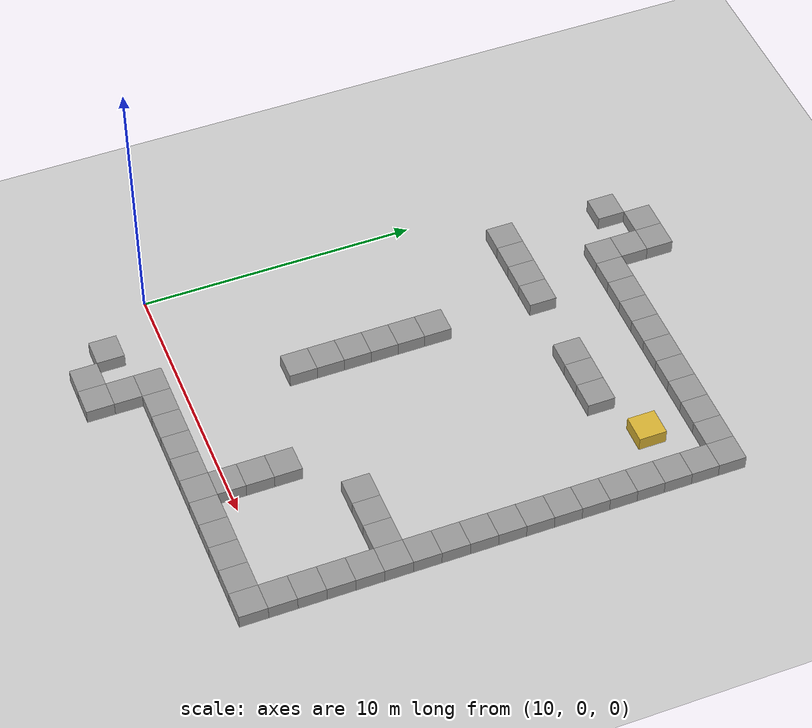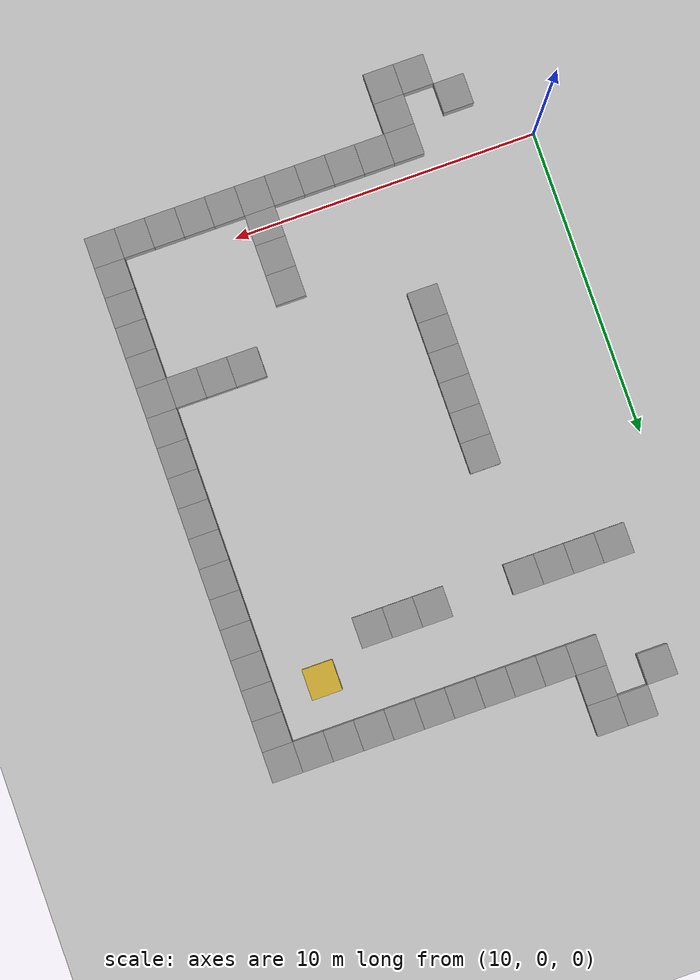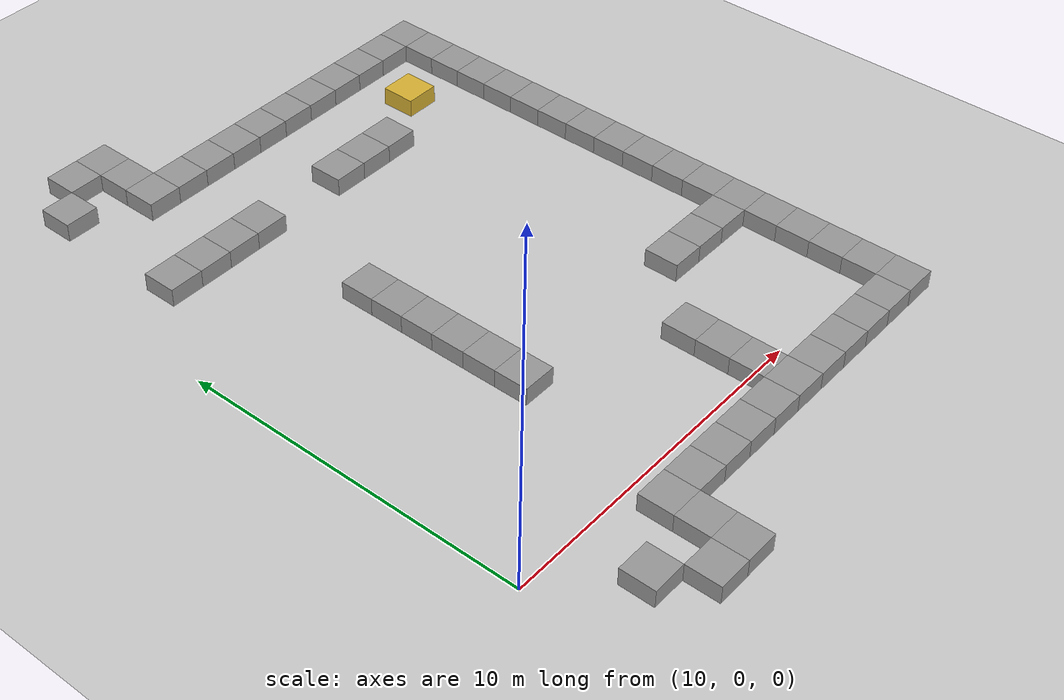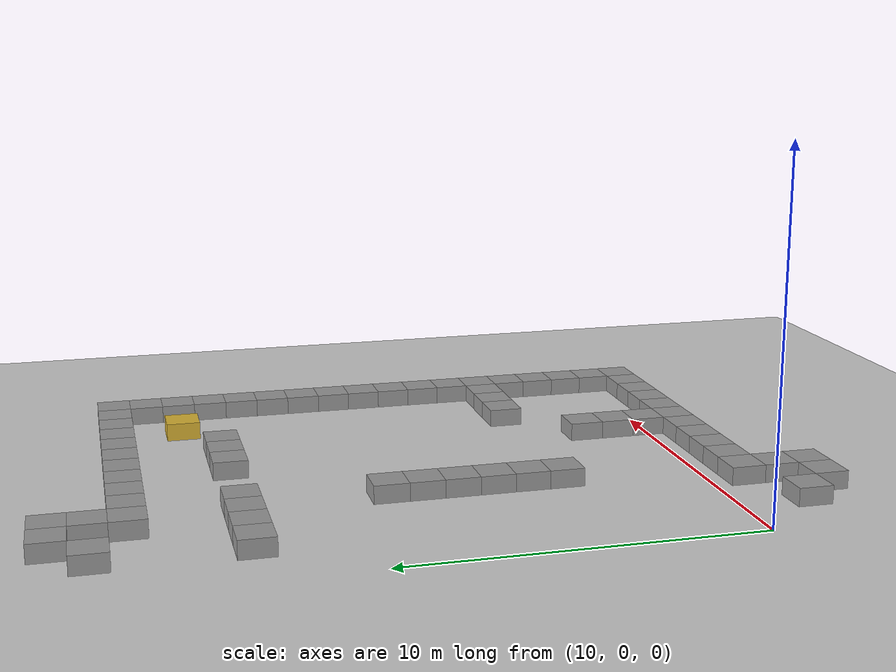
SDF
<sdf version="1.4">
 <world name="default">
  <model name="ground_plane">
   <static>1</static>
   <link name="link">
    <collision name="collision">
     <geometry><plane><normal>0 0 1</normal><size>100 100</size></plane></geometry>
     <surface><friction><ode><mu>100</mu><mu2>50</mu2></ode></friction></surface>
    </collision>
    <visual name="visual">
     <cast_shadows>0</cast_shadows>
     <geometry><plane><normal>0 0 1</normal><size>100 100</size></plane></geometry>
     <material>
      <script><uri>file://media/materials/scripts/gazebo.material</uri><name>Gazebo/Grey</name></script>
     </material>
    </visual>
    <velocity_decay><linear>0</linear><angular>0</angular></velocity_decay>
   </link>
  </model>
  <model name="unit_box_42">
   <pose>14 16 0 0 -0 0</pose>
   <link name="link">
    <inertial>
     <mass>1</mass>
     <inertia><ixx>1</ixx><ixy>0</ixy><ixz>0</ixz><iyy>1</iyy><iyz>0</iyz><izz>1</izz></inertia>
    </inertial>
    <collision name="collision"><geometry><box><size>1 1 1</size></box></geometry></collision>
    <visual name="visual">
     <geometry><box><size>1 1 1</size></box></geometry>
     <material>
      <script><uri>file://media/materials/scripts/gazebo.material</uri><name>Gazebo/Grey</name></script>
     </material>
    </visual>
    <velocity_decay><linear>0</linear><angular>0</angular></velocity_decay>
   </link>
   <static>1</static>
  </model>
  <model name="unit_box_43">
   <pose>15 16 0 0 -0 0</pose>
   <link name="link">
    <inertial>
     <mass>1</mass>
     <inertia><ixx>1</ixx><ixy>0</ixy><ixz>0</ixz><iyy>1</iyy><iyz>0</iyz><izz>1</izz></inertia>
    </inertial>
    <collision name="collision"><geometry><box><size>1 1 1</size></box></geometry></collision>
    <visual name="visual">
     <geometry><box><size>1 1 1</size></box></geometry>
     <material>
      <script><uri>file://media/materials/scripts/gazebo.material</uri><name>Gazebo/Grey</name></script>
     </material>
    </visual>
    <velocity_decay><linear>0</linear><angular>0</angular></velocity_decay>
   </link>
   <static>1</static>
  </model>
  <model name="unit_box_44">
   <pose>16 16 0 0 -0 0</pose>
   <link name="link">
    <inertial>
     <mass>1</mass>
     <inertia><ixx>1</ixx><ixy>0</ixy><ixz>0</ixz><iyy>1</iyy><iyz>0</iyz><izz>1</izz></inertia>
    </inertial>
    <collision name="collision"><geometry><box><size>1 1 1</size></box></geometry></collision>
    <visual name="visual">
     <geometry><box><size>1 1 1</size></box></geometry>
     <material>
      <script><uri>file://media/materials/scripts/gazebo.material</uri><name>Gazebo/Grey</name></script>
     </material>
    </visual>
    <velocity_decay><linear>0</linear><angular>0</angular></velocity_decay>
   </link>
   <static>1</static>
  </model>
  <model name="unit_box_45">
   <pose>17 16 0 0 -0 0</pose>
   <link name="link">
    <inertial>
     <mass>1</mass>
     <inertia><ixx>1</ixx><ixy>0</ixy><ixz>0</ixz><iyy>1</iyy><iyz>0</iyz><izz>1</izz></inertia>
    </inertial>
    <collision name="collision"><geometry><box><size>1 1 1</size></box></geometry></collision>
    <visual name="visual">
     <geometry><box><size>1 1 1</size></box></geometry>
     <material>
      <script><uri>file://media/materials/scripts/gazebo.material</uri><name>Gazebo/Grey</name></script>
     </material>
    </visual>
    <velocity_decay><linear>0</linear><angular>0</angular></velocity_decay>
   </link>
   <static>1</static>
  </model>
  <model name="unit_box_46">
   <pose>18 16 0 0 -0 0</pose>
   <link name="link">
    <inertial>
     <mass>1</mass>
     <inertia><ixx>1</ixx><ixy>0</ixy><ixz>0</ixz><iyy>1</iyy><iyz>0</iyz><izz>1</izz></inertia>
    </inertial>
    <collision name="collision"><geometry><box><size>1 1 1</size></box></geometry></collision>
    <visual name="visual">
     <geometry><box><size>1 1 1</size></box></geometry>
     <material>
      <script><uri>file://media/materials/scripts/gazebo.material</uri><name>Gazebo/Grey</name></script>
     </material>
    </visual>
    <velocity_decay><linear>0</linear><angular>0</angular></velocity_decay>
   </link>
   <static>1</static>
  </model>
  <model name="unit_box_47">
   <pose>19 16 0 0 -0 0</pose>
   <link name="link">
    <inertial>
     <mass>1</mass>
     <inertia><ixx>1</ixx><ixy>0</ixy><ixz>0</ixz><iyy>1</iyy><iyz>0</iyz><izz>1</izz></inertia>
    </inertial>
    <collision name="collision"><geometry><box><size>1 1 1</size></box></geometry></collision>
    <visual name="visual">
     <geometry><box><size>1 1 1</size></box></geometry>
     <material>
      <script><uri>file://media/materials/scripts/gazebo.material</uri><name>Gazebo/Grey</name></script>
     </material>
    </visual>
    <velocity_decay><linear>0</linear><angular>0</angular></velocity_decay>
   </link>
   <static>1</static>
  </model>
  <model name="unit_box_48">
   <pose>20 16 0 0 -0 0</pose>
   <link name="link">
    <inertial>
     <mass>1</mass>
     <inertia><ixx>1</ixx><ixy>0</ixy><ixz>0</ixz><iyy>1</iyy><iyz>0</iyz><izz>1</izz></inertia>
    </inertial>
    <collision name="collision"><geometry><box><size>1 1 1</size></box></geometry></collision>
    <visual name="visual">
     <geometry><box><size>1 1 1</size></box></geometry>
     <material>
      <script><uri>file://media/materials/scripts/gazebo.material</uri><name>Gazebo/Grey</name></script>
     </material>
    </visual>
    <velocity_decay><linear>0</linear><angular>0</angular></velocity_decay>
   </link>
   <static>1</static>
  </model>
  <model name="unit_box_49">
   <pose>21 16 0 0 -0 0</pose>
   <link name="link">
    <inertial>
     <mass>1</mass>
     <inertia><ixx>1</ixx><ixy>0</ixy><ixz>0</ixz><iyy>1</iyy><iyz>0</iyz><izz>1</izz></inertia>
    </inertial>
    <collision name="collision"><geometry><box><size>1 1 1</size></box></geometry></collision>
    <visual name="visual">
     <geometry><box><size>1 1 1</size></box></geometry>
     <material>
      <script><uri>file://media/materials/scripts/gazebo.material</uri><name>Gazebo/Grey</name></script>
     </material>
    </visual>
    <velocity_decay><linear>0</linear><angular>0</angular></velocity_decay>
   </link>
   <static>1</static>
  </model>
  <model name="unit_box_50">
   <pose>22 16 0 0 -0 0</pose>
   <link name="link">
    <inertial>
     <mass>1</mass>
     <inertia><ixx>1</ixx><ixy>0</ixy><ixz>0</ixz><iyy>1</iyy><iyz>0</iyz><izz>1</izz></inertia>
    </inertial>
    <collision name="collision"><geometry><box><size>1 1 1</size></box></geometry></collision>
    <visual name="visual">
     <geometry><box><size>1 1 1</size></box></geometry>
     <material>
      <script><uri>file://media/materials/scripts/gazebo.material</uri><name>Gazebo/Grey</name></script>
     </material>
    </visual>
    <velocity_decay><linear>0</linear><angular>0</angular></velocity_decay>
   </link>
   <static>1</static>
  </model>
  <model name="unit_box_51">
   <pose>23 16 0 0 -0 0</pose>
   <link name="link">
    <inertial>
     <mass>1</mass>
     <inertia><ixx>1</ixx><ixy>0</ixy><ixz>0</ixz><iyy>1</iyy><iyz>0</iyz><izz>1</izz></inertia>
    </inertial>
    <collision name="collision"><geometry><box><size>1 1 1</size></box></geometry></collision>
    <visual name="visual">
     <geometry><box><size>1 1 1</size></box></geometry>
     <material>
      <script><uri>file://media/materials/scripts/gazebo.material</uri><name>Gazebo/Grey</name></script>
     </material>
    </visual>
    <velocity_decay><linear>0</linear><angular>0</angular></velocity_decay>
   </link>
   <static>1</static>
  </model>
  <model name="unit_box_52">
   <pose>24 16 0 0 -0 0</pose>
   <link name="link">
    <inertial>
     <mass>1</mass>
     <inertia><ixx>1</ixx><ixy>0</ixy><ixz>0</ixz><iyy>1</iyy><iyz>0</iyz><izz>1</izz></inertia>
    </inertial>
    <collision name="collision"><geometry><box><size>1 1 1</size></box></geometry></collision>
    <visual name="visual">
     <geometry><box><size>1 1 1</size></box></geometry>
     <material>
      <script><uri>file://media/materials/scripts/gazebo.material</uri><name>Gazebo/Grey</name></script>
     </material>
    </visual>
    <velocity_decay><linear>0</linear><angular>0</angular></velocity_decay>
   </link>
   <static>1</static>
  </model>
  <model name="unit_box_53">
   <pose>24 15 0 0 -0 0</pose>
   <link name="link">
    <inertial>
     <mass>1</mass>
     <inertia><ixx>1</ixx><ixy>0</ixy><ixz>0</ixz><iyy>1</iyy><iyz>0</iyz><izz>1</izz></inertia>
    </inertial>
    <collision name="collision"><geometry><box><size>1 1 1</size></box></geometry></collision>
    <visual name="visual">
     <geometry><box><size>1 1 1</size></box></geometry>
     <material>
      <script><uri>file://media/materials/scripts/gazebo.material</uri><name>Gazebo/Grey</name></script>
     </material>
    </visual>
    <velocity_decay><linear>0</linear><angular>0</angular></velocity_decay>
   </link>
   <static>1</static>
  </model>
  <model name="unit_box_54">
   <pose>24 14 0 0 -0 0</pose>
   <link name="link">
    <inertial>
     <mass>1</mass>
     <inertia><ixx>1</ixx><ixy>0</ixy><ixz>0</ixz><iyy>1</iyy><iyz>0</iyz><izz>1</izz></inertia>
    </inertial>
    <collision name="collision"><geometry><box><size>1 1 1</size></box></geometry></collision>
    <visual name="visual">
     <geometry><box><size>1 1 1</size></box></geometry>
     <material>
      <script><uri>file://media/materials/scripts/gazebo.material</uri><name>Gazebo/Grey</name></script>
     </material>
    </visual>
    <velocity_decay><linear>0</linear><angular>0</angular></velocity_decay>
   </link>
   <static>1</static>
  </model>
  <model name="unit_box_55">
   <pose>24 13 0 0 -0 0</pose>
   <link name="link">
    <inertial>
     <mass>1</mass>
     <inertia><ixx>1</ixx><ixy>0</ixy><ixz>0</ixz><iyy>1</iyy><iyz>0</iyz><izz>1</izz></inertia>
    </inertial>
    <collision name="collision"><geometry><box><size>1 1 1</size></box></geometry></collision>
    <visual name="visual">
     <geometry><box><size>1 1 1</size></box></geometry>
     <material>
      <script><uri>file://media/materials/scripts/gazebo.material</uri><name>Gazebo/Grey</name></script>
     </material>
    </visual>
    <velocity_decay><linear>0</linear><angular>0</angular></velocity_decay>
   </link>
   <static>1</static>
  </model>
  <model name="unit_box_56">
   <pose>24 12 0 0 -0 0</pose>
   <link name="link">
    <inertial>
     <mass>1</mass>
     <inertia><ixx>1</ixx><ixy>0</ixy><ixz>0</ixz><iyy>1</iyy><iyz>0</iyz><izz>1</izz></inertia>
    </inertial>
    <collision name="collision"><geometry><box><size>1 1 1</size></box></geometry></collision>
    <visual name="visual">
     <geometry><box><size>1 1 1</size></box></geometry>
     <material>
      <script><uri>file://media/materials/scripts/gazebo.material</uri><name>Gazebo/Grey</name></script>
     </material>
    </visual>
    <velocity_decay><linear>0</linear><angular>0</angular></velocity_decay>
   </link>
   <static>1</static>
  </model>
  <model name="unit_box_57">
   <pose>24 11 0 0 -0 0</pose>
   <link name="link">
    <inertial>
     <mass>1</mass>
     <inertia><ixx>1</ixx><ixy>0</ixy><ixz>0</ixz><iyy>1</iyy><iyz>0</iyz><izz>1</izz></inertia>
    </inertial>
    <collision name="collision"><geometry><box><size>1 1 1</size></box></geometry></collision>
    <visual name="visual">
     <geometry><box><size>1 1 1</size></box></geometry>
     <material>
      <script><uri>file://media/materials/scripts/gazebo.material</uri><name>Gazebo/Grey</name></script>
     </material>
    </visual>
    <velocity_decay><linear>0</linear><angular>0</angular></velocity_decay>
   </link>
   <static>1</static>
  </model>
  <model name="unit_box_58">
   <pose>24 10 0 0 -0 0</pose>
   <link name="link">
    <inertial>
     <mass>1</mass>
     <inertia><ixx>1</ixx><ixy>0</ixy><ixz>0</ixz><iyy>1</iyy><iyz>0</iyz><izz>1</izz></inertia>
    </inertial>
    <collision name="collision"><geometry><box><size>1 1 1</size></box></geometry></collision>
    <visual name="visual">
     <geometry><box><size>1 1 1</size></box></geometry>
     <material>
      <script><uri>file://media/materials/scripts/gazebo.material</uri><name>Gazebo/Grey</name></script>
     </material>
    </visual>
    <velocity_decay><linear>0</linear><angular>0</angular></velocity_decay>
   </link>
   <static>1</static>
  </model>
  <model name="unit_box_59">
   <pose>24 9 0 0 -0 0</pose>
   <link name="link">
    <inertial>
     <mass>1</mass>
     <inertia><ixx>1</ixx><ixy>0</ixy><ixz>0</ixz><iyy>1</iyy><iyz>0</iyz><izz>1</izz></inertia>
    </inertial>
    <collision name="collision"><geometry><box><size>1 1 1</size></box></geometry></collision>
    <visual name="visual">
     <geometry><box><size>1 1 1</size></box></geometry>
     <material>
      <script><uri>file://media/materials/scripts/gazebo.material</uri><name>Gazebo/Grey</name></script>
     </material>
    </visual>
    <velocity_decay><linear>0</linear><angular>0</angular></velocity_decay>
   </link>
   <static>1</static>
  </model>
  <model name="unit_box_60">
   <pose>24 8 0 0 -0 0</pose>
   <link name="link">
    <inertial>
     <mass>1</mass>
     <inertia><ixx>1</ixx><ixy>0</ixy><ixz>0</ixz><iyy>1</iyy><iyz>0</iyz><izz>1</izz></inertia>
    </inertial>
    <collision name="collision"><geometry><box><size>1 1 1</size></box></geometry></collision>
    <visual name="visual">
     <geometry><box><size>1 1 1</size></box></geometry>
     <material>
      <script><uri>file://media/materials/scripts/gazebo.material</uri><name>Gazebo/Grey</name></script>
     </material>
    </visual>
    <velocity_decay><linear>0</linear><angular>0</angular></velocity_decay>
   </link>
   <static>1</static>
  </model>
  <model name="unit_box_61">
   <pose>24 7 0 0 -0 0</pose>
   <link name="link">
    <inertial>
     <mass>1</mass>
     <inertia><ixx>1</ixx><ixy>0</ixy><ixz>0</ixz><iyy>1</iyy><iyz>0</iyz><izz>1</izz></inertia>
    </inertial>
    <collision name="collision"><geometry><box><size>1 1 1</size></box></geometry></collision>
    <visual name="visual">
     <geometry><box><size>1 1 1</size></box></geometry>
     <material>
      <script><uri>file://media/materials/scripts/gazebo.material</uri><name>Gazebo/Grey</name></script>
     </material>
    </visual>
    <velocity_decay><linear>0</linear><angular>0</angular></velocity_decay>
   </link>
   <static>1</static>
  </model>
  <model name="unit_box_62">
   <pose>24 6 0 0 -0 0</pose>
   <link name="link">
    <inertial>
     <mass>1</mass>
     <inertia><ixx>1</ixx><ixy>0</ixy><ixz>0</ixz><iyy>1</iyy><iyz>0</iyz><izz>1</izz></inertia>
    </inertial>
    <collision name="collision"><geometry><box><size>1 1 1</size></box></geometry></collision>
    <visual name="visual">
     <geometry><box><size>1 1 1</size></box></geometry>
     <material>
      <script><uri>file://media/materials/scripts/gazebo.material</uri><name>Gazebo/Grey</name></script>
     </material>
    </visual>
    <velocity_decay><linear>0</linear><angular>0</angular></velocity_decay>
   </link>
   <static>1</static>
  </model>
  <model name="unit_box_63">
   <pose>24 5 0 0 -0 0</pose>
   <link name="link">
    <inertial>
     <mass>1</mass>
     <inertia><ixx>1</ixx><ixy>0</ixy><ixz>0</ixz><iyy>1</iyy><iyz>0</iyz><izz>1</izz></inertia>
    </inertial>
    <collision name="collision"><geometry><box><size>1 1 1</size></box></geometry></collision>
    <visual name="visual">
     <geometry><box><size>1 1 1</size></box></geometry>
     <material>
      <script><uri>file://media/materials/scripts/gazebo.material</uri><name>Gazebo/Grey</name></script>
     </material>
    </visual>
    <velocity_decay><linear>0</linear><angular>0</angular></velocity_decay>
   </link>
   <static>1</static>
  </model>
  <model name="unit_box_64">
   <pose>24 4 0 0 -0 0</pose>
   <link name="link">
    <inertial>
     <mass>1</mass>
     <inertia><ixx>1</ixx><ixy>0</ixy><ixz>0</ixz><iyy>1</iyy><iyz>0</iyz><izz>1</izz></inertia>
    </inertial>
    <collision name="collision"><geometry><box><size>1 1 1</size></box></geometry></collision>
    <visual name="visual">
     <geometry><box><size>1 1 1</size></box></geometry>
     <material>
      <script><uri>file://media/materials/scripts/gazebo.material</uri><name>Gazebo/Grey</name></script>
     </material>
    </visual>
    <velocity_decay><linear>0</linear><angular>0</angular></velocity_decay>
   </link>
   <static>1</static>
  </model>
  <model name="unit_box_65">
   <pose>24 3 0 0 -0 0</pose>
   <link name="link">
    <inertial>
     <mass>1</mass>
     <inertia><ixx>1</ixx><ixy>0</ixy><ixz>0</ixz><iyy>1</iyy><iyz>0</iyz><izz>1</izz></inertia>
    </inertial>
    <collision name="collision"><geometry><box><size>1 1 1</size></box></geometry></collision>
    <visual name="visual">
     <geometry><box><size>1 1 1</size></box></geometry>
     <material>
      <script><uri>file://media/materials/scripts/gazebo.material</uri><name>Gazebo/Grey</name></script>
     </material>
    </visual>
    <velocity_decay><linear>0</linear><angular>0</angular></velocity_decay>
   </link>
   <static>1</static>
  </model>
  <model name="unit_box_66">
   <pose>24 2 0 0 -0 0</pose>
   <link name="link">
    <inertial>
     <mass>1</mass>
     <inertia><ixx>1</ixx><ixy>0</ixy><ixz>0</ixz><iyy>1</iyy><iyz>0</iyz><izz>1</izz></inertia>
    </inertial>
    <collision name="collision"><geometry><box><size>1 1 1</size></box></geometry></collision>
    <visual name="visual">
     <geometry><box><size>1 1 1</size></box></geometry>
     <material>
      <script><uri>file://media/materials/scripts/gazebo.material</uri><name>Gazebo/Grey</name></script>
     </material>
    </visual>
    <velocity_decay><linear>0</linear><angular>0</angular></velocity_decay>
   </link>
   <static>1</static>
  </model>
  <model name="unit_box_67">
   <pose>24 1 0 0 -0 0</pose>
   <link name="link">
    <inertial>
     <mass>1</mass>
     <inertia><ixx>1</ixx><ixy>0</ixy><ixz>0</ixz><iyy>1</iyy><iyz>0</iyz><izz>1</izz></inertia>
    </inertial>
    <collision name="collision"><geometry><box><size>1 1 1</size></box></geometry></collision>
    <visual name="visual">
     <geometry><box><size>1 1 1</size></box></geometry>
     <material>
      <script><uri>file://media/materials/scripts/gazebo.material</uri><name>Gazebo/Grey</name></script>
     </material>
    </visual>
    <velocity_decay><linear>0</linear><angular>0</angular></velocity_decay>
   </link>
   <static>1</static>
  </model>
  <model name="unit_box_68">
   <pose>24 0 0 0 -0 0</pose>
   <link name="link">
    <inertial>
     <mass>1</mass>
     <inertia><ixx>1</ixx><ixy>0</ixy><ixz>0</ixz><iyy>1</iyy><iyz>0</iyz><izz>1</izz></inertia>
    </inertial>
    <collision name="collision"><geometry><box><size>1 1 1</size></box></geometry></collision>
    <visual name="visual">
     <geometry><box><size>1 1 1</size></box></geometry>
     <material>
      <script><uri>file://media/materials/scripts/gazebo.material</uri><name>Gazebo/Grey</name></script>
     </material>
    </visual>
    <velocity_decay><linear>0</linear><angular>0</angular></velocity_decay>
   </link>
   <static>1</static>
  </model>
  <model name="unit_box_69">
   <pose>24 -1 0 0 -0 0</pose>
   <link name="link">
    <inertial>
     <mass>1</mass>
     <inertia><ixx>1</ixx><ixy>0</ixy><ixz>0</ixz><iyy>1</iyy><iyz>0</iyz><izz>1</izz></inertia>
    </inertial>
    <collision name="collision"><geometry><box><size>1 1 1</size></box></geometry></collision>
    <visual name="visual">
     <geometry><box><size>1 1 1</size></box></geometry>
     <material>
      <script><uri>file://media/materials/scripts/gazebo.material</uri><name>Gazebo/Grey</name></script>
     </material>
    </visual>
    <velocity_decay><linear>0</linear><angular>0</angular></velocity_decay>
   </link>
   <static>1</static>
  </model>
  <model name="unit_box_70">
   <pose>19 -1 0 0 -0 0</pose>
   <link name="link">
    <inertial>
     <mass>1</mass>
     <inertia><ixx>1</ixx><ixy>0</ixy><ixz>0</ixz><iyy>1</iyy><iyz>0</iyz><izz>1</izz></inertia>
    </inertial>
    <collision name="collision"><geometry><box><size>1 1 1</size></box></geometry></collision>
    <visual name="visual">
     <geometry><box><size>1 1 1</size></box></geometry>
     <material>
      <script><uri>file://media/materials/scripts/gazebo.material</uri><name>Gazebo/Grey</name></script>
     </material>
    </visual>
    <velocity_decay><linear>0</linear><angular>0</angular></velocity_decay>
   </link>
   <static>1</static>
  </model>
  <model name="unit_box_71">
   <pose>18 -1 0 0 -0 0</pose>
   <link name="link">
    <inertial>
     <mass>1</mass>
     <inertia><ixx>1</ixx><ixy>0</ixy><ixz>0</ixz><iyy>1</iyy><iyz>0</iyz><izz>1</izz></inertia>
    </inertial>
    <collision name="collision"><geometry><box><size>1 1 1</size></box></geometry></collision>
    <visual name="visual">
     <geometry><box><size>1 1 1</size></box></geometry>
     <material>
      <script><uri>file://media/materials/scripts/gazebo.material</uri><name>Gazebo/Grey</name></script>
     </material>
    </visual>
    <velocity_decay><linear>0</linear><angular>0</angular></velocity_decay>
   </link>
   <static>1</static>
  </model>
  <model name="unit_box_72">
   <pose>17 -1 0 0 -0 0</pose>
   <link name="link">
    <inertial>
     <mass>1</mass>
     <inertia><ixx>1</ixx><ixy>0</ixy><ixz>0</ixz><iyy>1</iyy><iyz>0</iyz><izz>1</izz></inertia>
    </inertial>
    <collision name="collision"><geometry><box><size>1 1 1</size></box></geometry></collision>
    <visual name="visual">
     <geometry><box><size>1 1 1</size></box></geometry>
     <material>
      <script><uri>file://media/materials/scripts/gazebo.material</uri><name>Gazebo/Grey</name></script>
     </material>
    </visual>
    <velocity_decay><linear>0</linear><angular>0</angular></velocity_decay>
   </link>
   <static>1</static>
  </model>
  <model name="unit_box_73">
   <pose>16 -1 0 0 -0 0</pose>
   <link name="link">
    <inertial>
     <mass>1</mass>
     <inertia><ixx>1</ixx><ixy>0</ixy><ixz>0</ixz><iyy>1</iyy><iyz>0</iyz><izz>1</izz></inertia>
    </inertial>
    <collision name="collision"><geometry><box><size>1 1 1</size></box></geometry></collision>
    <visual name="visual">
     <geometry><box><size>1 1 1</size></box></geometry>
     <material>
      <script><uri>file://media/materials/scripts/gazebo.material</uri><name>Gazebo/Grey</name></script>
     </material>
    </visual>
    <velocity_decay><linear>0</linear><angular>0</angular></velocity_decay>
   </link>
   <static>1</static>
  </model>
  <model name="unit_box_74">
   <pose>15 -1 0 0 -0 0</pose>
   <link name="link">
    <inertial>
     <mass>1</mass>
     <inertia><ixx>1</ixx><ixy>0</ixy><ixz>0</ixz><iyy>1</iyy><iyz>0</iyz><izz>1</izz></inertia>
    </inertial>
    <collision name="collision"><geometry><box><size>1 1 1</size></box></geometry></collision>
    <visual name="visual">
     <geometry><box><size>1 1 1</size></box></geometry>
     <material>
      <script><uri>file://media/materials/scripts/gazebo.material</uri><name>Gazebo/Grey</name></script>
     </material>
    </visual>
    <velocity_decay><linear>0</linear><angular>0</angular></velocity_decay>
   </link>
   <static>1</static>
  </model>
  <model name="unit_box_75">
   <pose>14 -1 0 0 -0 0</pose>
   <link name="link">
    <inertial>
     <mass>1</mass>
     <inertia><ixx>1</ixx><ixy>0</ixy><ixz>0</ixz><iyy>1</iyy><iyz>0</iyz><izz>1</izz></inertia>
    </inertial>
    <collision name="collision"><geometry><box><size>1 1 1</size></box></geometry></collision>
    <visual name="visual">
     <geometry><box><size>1 1 1</size></box></geometry>
     <material>
      <script><uri>file://media/materials/scripts/gazebo.material</uri><name>Gazebo/Grey</name></script>
     </material>
    </visual>
    <velocity_decay><linear>0</linear><angular>0</angular></velocity_decay>
   </link>
   <static>1</static>
  </model>
  <model name="unit_box_77">
   <pose>20 -1 0 0 -0 0</pose>
   <link name="link">
    <inertial>
     <mass>1</mass>
     <inertia><ixx>1</ixx><ixy>0</ixy><ixz>0</ixz><iyy>1</iyy><iyz>0</iyz><izz>1</izz></inertia>
    </inertial>
    <collision name="collision"><geometry><box><size>1 1 1</size></box></geometry></collision>
    <visual name="visual">
     <geometry><box><size>1 1 1</size></box></geometry>
     <material>
      <script><uri>file://media/materials/scripts/gazebo.material</uri><name>Gazebo/Grey</name></script>
     </material>
    </visual>
    <velocity_decay><linear>0</linear><angular>0</angular></velocity_decay>
   </link>
   <static>1</static>
  </model>
  <model name="unit_box_78">
   <pose>21 -1 0 0 -0 0</pose>
   <link name="link">
    <inertial>
     <mass>1</mass>
     <inertia><ixx>1</ixx><ixy>0</ixy><ixz>0</ixz><iyy>1</iyy><iyz>0</iyz><izz>1</izz></inertia>
    </inertial>
    <collision name="collision"><geometry><box><size>1 1 1</size></box></geometry></collision>
    <visual name="visual">
     <geometry><box><size>1 1 1</size></box></geometry>
     <material>
      <script><uri>file://media/materials/scripts/gazebo.material</uri><name>Gazebo/Grey</name></script>
     </material>
    </visual>
    <velocity_decay><linear>0</linear><angular>0</angular></velocity_decay>
   </link>
   <static>1</static>
  </model>
  <model name="unit_box_79">
   <pose>22 -1 0 0 -0 0</pose>
   <link name="link">
    <inertial>
     <mass>1</mass>
     <inertia><ixx>1</ixx><ixy>0</ixy><ixz>0</ixz><iyy>1</iyy><iyz>0</iyz><izz>1</izz></inertia>
    </inertial>
    <collision name="collision"><geometry><box><size>1 1 1</size></box></geometry></collision>
    <visual name="visual">
     <geometry><box><size>1 1 1</size></box></geometry>
     <material>
      <script><uri>file://media/materials/scripts/gazebo.material</uri><name>Gazebo/Grey</name></script>
     </material>
    </visual>
    <velocity_decay><linear>0</linear><angular>0</angular></velocity_decay>
   </link>
   <static>1</static>
  </model>
  <model name="unit_box_80">
   <pose>23 -1 0 0 -0 0</pose>
   <link name="link">
    <inertial>
     <mass>1</mass>
     <inertia><ixx>1</ixx><ixy>0</ixy><ixz>0</ixz><iyy>1</iyy><iyz>0</iyz><izz>1</izz></inertia>
    </inertial>
    <collision name="collision"><geometry><box><size>1 1 1</size></box></geometry></collision>
    <visual name="visual">
     <geometry><box><size>1 1 1</size></box></geometry>
     <material>
      <script><uri>file://media/materials/scripts/gazebo.material</uri><name>Gazebo/Grey</name></script>
     </material>
    </visual>
    <velocity_decay><linear>0</linear><angular>0</angular></velocity_decay>
   </link>
   <static>1</static>
  </model>
  <model name="unit_box_81">
   <pose>24 -1 0 0 -0 0</pose>
   <link name="link">
    <inertial>
     <mass>1</mass>
     <inertia><ixx>1</ixx><ixy>0</ixy><ixz>0</ixz><iyy>1</iyy><iyz>0</iyz><izz>1</izz></inertia>
    </inertial>
    <collision name="collision"><geometry><box><size>1 1 1</size></box></geometry></collision>
    <visual name="visual">
     <geometry><box><size>1 1 1</size></box></geometry>
     <material>
      <script><uri>file://media/materials/scripts/gazebo.material</uri><name>Gazebo/Grey</name></script>
     </material>
    </visual>
    <velocity_decay><linear>0</linear><angular>0</angular></velocity_decay>
   </link>
   <static>1</static>
  </model>
  <model name="unit_box_83">
   <pose>13 -3 0 0 -0 0</pose>
   <link name="link">
    <inertial>
     <mass>1</mass>
     <inertia><ixx>1</ixx><ixy>0</ixy><ixz>0</ixz><iyy>1</iyy><iyz>0</iyz><izz>1</izz></inertia>
    </inertial>
    <collision name="collision"><geometry><box><size>1 1 1</size></box></geometry></collision>
    <visual name="visual">
     <geometry><box><size>1 1 1</size></box></geometry>
     <material>
      <script><uri>file://media/materials/scripts/gazebo.material</uri><name>Gazebo/Grey</name></script>
     </material>
    </visual>
    <velocity_decay><linear>0</linear><angular>0</angular></velocity_decay>
   </link>
   <static>1</static>
  </model>
  <model name="unit_box_84">
   <pose>14 -3 0 0 -0 0</pose>
   <link name="link">
    <inertial>
     <mass>1</mass>
     <inertia><ixx>1</ixx><ixy>0</ixy><ixz>0</ixz><iyy>1</iyy><iyz>0</iyz><izz>1</izz></inertia>
    </inertial>
    <collision name="collision"><geometry><box><size>1 1 1</size></box></geometry></collision>
    <visual name="visual">
     <geometry><box><size>1 1 1</size></box></geometry>
     <material>
      <script><uri>file://media/materials/scripts/gazebo.material</uri><name>Gazebo/Grey</name></script>
     </material>
    </visual>
    <velocity_decay><linear>0</linear><angular>0</angular></velocity_decay>
   </link>
   <static>1</static>
  </model>
  <model name="unit_box_86">
   <pose>13 18 0 0 -0 0</pose>
   <link name="link">
    <inertial>
     <mass>1</mass>
     <inertia><ixx>1</ixx><ixy>0</ixy><ixz>0</ixz><iyy>1</iyy><iyz>0</iyz><izz>1</izz></inertia>
    </inertial>
    <collision name="collision"><geometry><box><size>1 1 1</size></box></geometry></collision>
    <visual name="visual">
     <geometry><box><size>1 1 1</size></box></geometry>
     <material>
      <script><uri>file://media/materials/scripts/gazebo.material</uri><name>Gazebo/Grey</name></script>
     </material>
    </visual>
    <velocity_decay><linear>0</linear><angular>0</angular></velocity_decay>
   </link>
   <static>1</static>
  </model>
  <model name="unit_box_87">
   <pose>14 18 0 0 -0 0</pose>
   <link name="link">
    <inertial>
     <mass>1</mass>
     <inertia><ixx>1</ixx><ixy>0</ixy><ixz>0</ixz><iyy>1</iyy><iyz>0</iyz><izz>1</izz></inertia>
    </inertial>
    <collision name="collision"><geometry><box><size>1 1 1</size></box></geometry></collision>
    <visual name="visual">
     <geometry><box><size>1 1 1</size></box></geometry>
     <material>
      <script><uri>file://media/materials/scripts/gazebo.material</uri><name>Gazebo/Grey</name></script>
     </material>
    </visual>
    <velocity_decay><linear>0</linear><angular>0</angular></velocity_decay>
   </link>
   <static>1</static>
  </model>
  <model name="unit_box_88">
   <pose>19 0 0 0 -0 0</pose>
   <link name="link">
    <inertial>
     <mass>1</mass>
     <inertia><ixx>1</ixx><ixy>0</ixy><ixz>0</ixz><iyy>1</iyy><iyz>0</iyz><izz>1</izz></inertia>
    </inertial>
    <collision name="collision"><geometry><box><size>1 1 1</size></box></geometry></collision>
    <visual name="visual">
     <geometry><box><size>1 1 1</size></box></geometry>
     <material>
      <script><uri>file://media/materials/scripts/gazebo.material</uri><name>Gazebo/Grey</name></script>
     </material>
    </visual>
    <velocity_decay><linear>0</linear><angular>0</angular></velocity_decay>
   </link>
   <static>1</static>
  </model>
  <model name="unit_box_89">
   <pose>19 1 0 0 -0 0</pose>
   <link name="link">
    <inertial>
     <mass>1</mass>
     <inertia><ixx>1</ixx><ixy>0</ixy><ixz>0</ixz><iyy>1</iyy><iyz>0</iyz><izz>1</izz></inertia>
    </inertial>
    <collision name="collision"><geometry><box><size>1 1 1</size></box></geometry></collision>
    <visual name="visual">
     <geometry><box><size>1 1 1</size></box></geometry>
     <material>
      <script><uri>file://media/materials/scripts/gazebo.material</uri><name>Gazebo/Grey</name></script>
     </material>
    </visual>
    <velocity_decay><linear>0</linear><angular>0</angular></velocity_decay>
   </link>
   <static>1</static>
  </model>
  <model name="unit_box_90">
   <pose>19 2 0 0 -0 0</pose>
   <link name="link">
    <inertial>
     <mass>1</mass>
     <inertia><ixx>1</ixx><ixy>0</ixy><ixz>0</ixz><iyy>1</iyy><iyz>0</iyz><izz>1</izz></inertia>
    </inertial>
    <collision name="collision"><geometry><box><size>1 1 1</size></box></geometry></collision>
    <visual name="visual">
     <geometry><box><size>1 1 1</size></box></geometry>
     <material>
      <script><uri>file://media/materials/scripts/gazebo.material</uri><name>Gazebo/Grey</name></script>
     </material>
    </visual>
    <velocity_decay><linear>0</linear><angular>0</angular></velocity_decay>
   </link>
   <static>1</static>
  </model>
  <model name="unit_box_91">
   <pose>21 4 0 0 -0 0</pose>
   <link name="link">
    <inertial>
     <mass>1</mass>
     <inertia><ixx>1</ixx><ixy>0</ixy><ixz>0</ixz><iyy>1</iyy><iyz>0</iyz><izz>1</izz></inertia>
    </inertial>
    <collision name="collision"><geometry><box><size>1 1 1</size></box></geometry></collision>
    <visual name="visual">
     <geometry><box><size>1 1 1</size></box></geometry>
     <material>
      <script><uri>file://media/materials/scripts/gazebo.material</uri><name>Gazebo/Grey</name></script>
     </material>
    </visual>
    <velocity_decay><linear>0</linear><angular>0</angular></velocity_decay>
   </link>
   <static>1</static>
  </model>
  <model name="unit_box_92">
   <pose>22 4 0 0 -0 0</pose>
   <link name="link">
    <inertial>
     <mass>1</mass>
     <inertia><ixx>1</ixx><ixy>0</ixy><ixz>0</ixz><iyy>1</iyy><iyz>0</iyz><izz>1</izz></inertia>
    </inertial>
    <collision name="collision"><geometry><box><size>1 1 1</size></box></geometry></collision>
    <visual name="visual">
     <geometry><box><size>1 1 1</size></box></geometry>
     <material>
      <script><uri>file://media/materials/scripts/gazebo.material</uri><name>Gazebo/Grey</name></script>
     </material>
    </visual>
    <velocity_decay><linear>0</linear><angular>0</angular></velocity_decay>
   </link>
   <static>1</static>
  </model>
  <model name="unit_box_93">
   <pose>23 4 0 0 -0 0</pose>
   <link name="link">
    <inertial>
     <mass>1</mass>
     <inertia><ixx>1</ixx><ixy>0</ixy><ixz>0</ixz><iyy>1</iyy><iyz>0</iyz><izz>1</izz></inertia>
    </inertial>
    <collision name="collision"><geometry><box><size>1 1 1</size></box></geometry></collision>
    <visual name="visual">
     <geometry><box><size>1 1 1</size></box></geometry>
     <material>
      <script><uri>file://media/materials/scripts/gazebo.material</uri><name>Gazebo/Grey</name></script>
     </material>
    </visual>
    <velocity_decay><linear>0</linear><angular>0</angular></velocity_decay>
   </link>
   <static>1</static>
  </model>
  <model name="unit_box_114">
   <pose>12 13 0 0 -0 0</pose>
   <link name="link">
    <inertial>
     <mass>1</mass>
     <inertia><ixx>1</ixx><ixy>0</ixy><ixz>0</ixz><iyy>1</iyy><iyz>0</iyz><izz>1</izz></inertia>
    </inertial>
    <collision name="collision"><geometry><box><size>1 1 1</size></box></geometry></collision>
    <visual name="visual">
     <geometry><box><size>1 1 1</size></box></geometry>
     <material>
      <script><uri>file://media/materials/scripts/gazebo.material</uri><name>Gazebo/Grey</name></script>
     </material>
    </visual>
    <velocity_decay><linear>0</linear><angular>0</angular></velocity_decay>
   </link>
   <static>1</static>
  </model>
  <model name="unit_box_115">
   <pose>13 13 0 0 -0 0</pose>
   <link name="link">
    <inertial>
     <mass>1</mass>
     <inertia><ixx>1</ixx><ixy>0</ixy><ixz>0</ixz><iyy>1</iyy><iyz>0</iyz><izz>1</izz></inertia>
    </inertial>
    <collision name="collision"><geometry><box><size>1 1 1</size></box></geometry></collision>
    <visual name="visual">
     <geometry><box><size>1 1 1</size></box></geometry>
     <material>
      <script><uri>file://media/materials/scripts/gazebo.material</uri><name>Gazebo/Grey</name></script>
     </material>
    </visual>
    <velocity_decay><linear>0</linear><angular>0</angular></velocity_decay>
   </link>
   <static>1</static>
  </model>
  <model name="unit_box_116">
   <pose>14 13 0 0 -0 0</pose>
   <link name="link">
    <inertial>
     <mass>1</mass>
     <inertia><ixx>1</ixx><ixy>0</ixy><ixz>0</ixz><iyy>1</iyy><iyz>0</iyz><izz>1</izz></inertia>
    </inertial>
    <collision name="collision"><geometry><box><size>1 1 1</size></box></geometry></collision>
    <visual name="visual">
     <geometry><box><size>1 1 1</size></box></geometry>
     <material>
      <script><uri>file://media/materials/scripts/gazebo.material</uri><name>Gazebo/Grey</name></script>
     </material>
    </visual>
    <velocity_decay><linear>0</linear><angular>0</angular></velocity_decay>
   </link>
   <static>1</static>
  </model>
  <model name="unit_box_117">
   <pose>15 13 0 0 -0 0</pose>
   <link name="link">
    <inertial>
     <mass>1</mass>
     <inertia><ixx>1</ixx><ixy>0</ixy><ixz>0</ixz><iyy>1</iyy><iyz>0</iyz><izz>1</izz></inertia>
    </inertial>
    <collision name="collision"><geometry><box><size>1 1 1</size></box></geometry></collision>
    <visual name="visual">
     <geometry><box><size>1 1 1</size></box></geometry>
     <material>
      <script><uri>file://media/materials/scripts/gazebo.material</uri><name>Gazebo/Grey</name></script>
     </material>
    </visual>
    <velocity_decay><linear>0</linear><angular>0</angular></velocity_decay>
   </link>
   <static>1</static>
  </model>
  <model name="unit_box_118">
   <pose>18 13 0 0 -0 0</pose>
   <link name="link">
    <inertial>
     <mass>1</mass>
     <inertia><ixx>1</ixx><ixy>0</ixy><ixz>0</ixz><iyy>1</iyy><iyz>0</iyz><izz>1</izz></inertia>
    </inertial>
    <collision name="collision"><geometry><box><size>1 1 1</size></box></geometry></collision>
    <visual name="visual">
     <geometry><box><size>1 1 1</size></box></geometry>
     <material>
      <script><uri>file://media/materials/scripts/gazebo.material</uri><name>Gazebo/Grey</name></script>
     </material>
    </visual>
    <velocity_decay><linear>0</linear><angular>0</angular></velocity_decay>
   </link>
   <static>1</static>
  </model>
  <model name="unit_box_119">
   <pose>19 13 0 0 -0 0</pose>
   <link name="link">
    <inertial>
     <mass>1</mass>
     <inertia><ixx>1</ixx><ixy>0</ixy><ixz>0</ixz><iyy>1</iyy><iyz>0</iyz><izz>1</izz></inertia>
    </inertial>
    <collision name="collision"><geometry><box><size>1 1 1</size></box></geometry></collision>
    <visual name="visual">
     <geometry><box><size>1 1 1</size></box></geometry>
     <material>
      <script><uri>file://media/materials/scripts/gazebo.material</uri><name>Gazebo/Grey</name></script>
     </material>
    </visual>
    <velocity_decay><linear>0</linear><angular>0</angular></velocity_decay>
   </link>
   <static>1</static>
  </model>
  <model name="unit_box_120">
   <pose>20 13 0 0 -0 0</pose>
   <link name="link">
    <inertial>
     <mass>1</mass>
     <inertia><ixx>1</ixx><ixy>0</ixy><ixz>0</ixz><iyy>1</iyy><iyz>0</iyz><izz>1</izz></inertia>
    </inertial>
    <collision name="collision"><geometry><box><size>1 1 1</size></box></geometry></collision>
    <visual name="visual">
     <geometry><box><size>1 1 1</size></box></geometry>
     <material>
      <script><uri>file://media/materials/scripts/gazebo.material</uri><name>Gazebo/Grey</name></script>
     </material>
    </visual>
    <velocity_decay><linear>0</linear><angular>0</angular></velocity_decay>
   </link>
   <static>1</static>
  </model>
  <model name="unit_box_121">
   <pose>15 9 0 0 -0 0</pose>
   <link name="link">
    <inertial>
     <mass>1</mass>
     <inertia><ixx>1</ixx><ixy>0</ixy><ixz>0</ixz><iyy>1</iyy><iyz>0</iyz><izz>1</izz></inertia>
    </inertial>
    <collision name="collision"><geometry><box><size>1 1 1</size></box></geometry></collision>
    <visual name="visual">
     <geometry><box><size>1 1 1</size></box></geometry>
     <material>
      <script><uri>file://media/materials/scripts/gazebo.material</uri><name>Gazebo/Grey</name></script>
     </material>
    </visual>
    <velocity_decay><linear>0</linear><angular>0</angular></velocity_decay>
   </link>
   <static>1</static>
  </model>
  <model name="unit_box_122">
   <pose>15 8 0 0 -0 0</pose>
   <link name="link">
    <inertial>
     <mass>1</mass>
     <inertia><ixx>1</ixx><ixy>0</ixy><ixz>0</ixz><iyy>1</iyy><iyz>0</iyz><izz>1</izz></inertia>
    </inertial>
    <collision name="collision"><geometry><box><size>1 1 1</size></box></geometry></collision>
    <visual name="visual">
     <geometry><box><size>1 1 1</size></box></geometry>
     <material>
      <script><uri>file://media/materials/scripts/gazebo.material</uri><name>Gazebo/Grey</name></script>
     </material>
    </visual>
    <velocity_decay><linear>0</linear><angular>0</angular></velocity_decay>
   </link>
   <static>1</static>
  </model>
  <model name="unit_box_123">
   <pose>15 7 0 0 -0 0</pose>
   <link name="link">
    <inertial>
     <mass>1</mass>
     <inertia><ixx>1</ixx><ixy>0</ixy><ixz>0</ixz><iyy>1</iyy><iyz>0</iyz><izz>1</izz></inertia>
    </inertial>
    <collision name="collision"><geometry><box><size>1 1 1</size></box></geometry></collision>
    <visual name="visual">
     <geometry><box><size>1 1 1</size></box></geometry>
     <material>
      <script><uri>file://media/materials/scripts/gazebo.material</uri><name>Gazebo/Grey</name></script>
     </material>
    </visual>
    <velocity_decay><linear>0</linear><angular>0</angular></velocity_decay>
   </link>
   <static>1</static>
  </model>
  <model name="unit_box_124">
   <pose>15 6 0 0 -0 0</pose>
   <link name="link">
    <inertial>
     <mass>1</mass>
     <inertia><ixx>1</ixx><ixy>0</ixy><ixz>0</ixz><iyy>1</iyy><iyz>0</iyz><izz>1</izz></inertia>
    </inertial>
    <collision name="collision"><geometry><box><size>1 1 1</size></box></geometry></collision>
    <visual name="visual">
     <geometry><box><size>1 1 1</size></box></geometry>
     <material>
      <script><uri>file://media/materials/scripts/gazebo.material</uri><name>Gazebo/Grey</name></script>
     </material>
    </visual>
    <velocity_decay><linear>0</linear><angular>0</angular></velocity_decay>
   </link>
   <static>1</static>
  </model>
  <model name="unit_box_125">
   <pose>15 5 0 0 -0 0</pose>
   <link name="link">
    <inertial>
     <mass>1</mass>
     <inertia><ixx>1</ixx><ixy>0</ixy><ixz>0</ixz><iyy>1</iyy><iyz>0</iyz><izz>1</izz></inertia>
    </inertial>
    <collision name="collision"><geometry><box><size>1 1 1</size></box></geometry></collision>
    <visual name="visual">
     <geometry><box><size>1 1 1</size></box></geometry>
     <material>
      <script><uri>file://media/materials/scripts/gazebo.material</uri><name>Gazebo/Grey</name></script>
     </material>
    </visual>
    <velocity_decay><linear>0</linear><angular>0</angular></velocity_decay>
   </link>
   <static>1</static>
  </model>
  <model name="unit_box_126">
   <pose>15 4 0 0 -0 0</pose>
   <link name="link">
    <inertial>
     <mass>1</mass>
     <inertia><ixx>1</ixx><ixy>0</ixy><ixz>0</ixz><iyy>1</iyy><iyz>0</iyz><izz>1</izz></inertia>
    </inertial>
    <collision name="collision"><geometry><box><size>1 1 1</size></box></geometry></collision>
    <visual name="visual">
     <geometry><box><size>1 1 1</size></box></geometry>
     <material>
      <script><uri>file://media/materials/scripts/gazebo.material</uri><name>Gazebo/Grey</name></script>
     </material>
    </visual>
    <velocity_decay><linear>0</linear><angular>0</angular></velocity_decay>
   </link>
   <static>1</static>
  </model>
  <model name="unit_box_131">
   <pose>12 -2 0 0 -0 0</pose>
   <link name="link">
    <inertial>
     <mass>1</mass>
     <inertia><ixx>1</ixx><ixy>0</ixy><ixz>0</ixz><iyy>1</iyy><iyz>0</iyz><izz>1</izz></inertia>
    </inertial>
    <collision name="collision"><geometry><box><size>1 1 1</size></box></geometry></collision>
    <visual name="visual">
     <geometry><box><size>1 1 1</size></box></geometry>
     <material>
      <script><uri>file://media/materials/scripts/gazebo.material</uri><name>Gazebo/Grey</name></script>
     </material>
    </visual>
    <velocity_decay><linear>0</linear><angular>0</angular></velocity_decay>
   </link>
   <static>1</static>
  </model>
  <model name="unit_box_132">
   <pose>14 -2 0 0 -0 0</pose>
   <link name="link">
    <inertial>
     <mass>1</mass>
     <inertia><ixx>1</ixx><ixy>0</ixy><ixz>0</ixz><iyy>1</iyy><iyz>0</iyz><izz>1</izz></inertia>
    </inertial>
    <collision name="collision"><geometry><box><size>1 1 1</size></box></geometry></collision>
    <visual name="visual">
     <geometry><box><size>1 1 1</size></box></geometry>
     <material>
      <script><uri>file://media/materials/scripts/gazebo.material</uri><name>Gazebo/Grey</name></script>
     </material>
    </visual>
    <velocity_decay><linear>0</linear><angular>0</angular></velocity_decay>
   </link>
   <static>1</static>
  </model>
  <model name="unit_box_133">
   <pose>14 17 0 0 -0 0</pose>
   <link name="link">
    <inertial>
     <mass>1</mass>
     <inertia><ixx>1</ixx><ixy>0</ixy><ixz>0</ixz><iyy>1</iyy><iyz>0</iyz><izz>1</izz></inertia>
    </inertial>
    <collision name="collision"><geometry><box><size>1 1 1</size></box></geometry></collision>
    <visual name="visual">
     <geometry><box><size>1 1 1</size></box></geometry>
     <material>
      <script><uri>file://media/materials/scripts/gazebo.material</uri><name>Gazebo/Grey</name></script>
     </material>
    </visual>
    <velocity_decay><linear>0</linear><angular>0</angular></velocity_decay>
   </link>
   <static>1</static>
  </model>
  <model name="unit_box_134">
   <pose>12 17 0 0 -0 0</pose>
   <link name="link">
    <inertial>
     <mass>1</mass>
     <inertia><ixx>1</ixx><ixy>0</ixy><ixz>0</ixz><iyy>1</iyy><iyz>0</iyz><izz>1</izz></inertia>
    </inertial>
    <collision name="collision"><geometry><box><size>1 1 1</size></box></geometry></collision>
    <visual name="visual">
     <geometry><box><size>1 1 1</size></box></geometry>
     <material>
      <script><uri>file://media/materials/scripts/gazebo.material</uri><name>Gazebo/Grey</name></script>
     </material>
    </visual>
    <velocity_decay><linear>0</linear><angular>0</angular></velocity_decay>
   </link>
   <static>1</static>
  </model>
  <model name="unit_box_135">
   <pose>14 17 0 0 -0 0</pose>
   <link name="link">
    <inertial>
     <mass>1</mass>
     <inertia><ixx>1</ixx><ixy>0</ixy><ixz>0</ixz><iyy>1</iyy><iyz>0</iyz><izz>1</izz></inertia>
    </inertial>
    <collision name="collision"><geometry><box><size>1 1 1</size></box></geometry></collision>
    <visual name="visual">
     <geometry><box><size>1 1 1</size></box></geometry>
     <material>
      <script><uri>file://media/materials/scripts/gazebo.material</uri><name>Gazebo/Grey</name></script>
     </material>
    </visual>
    <velocity_decay><linear>0</linear><angular>0</angular></velocity_decay>
   </link>
   <static>1</static>
  </model>
  <model name="unit_box_136">
   <pose>22 14 0 0 -0 0</pose>
   <link name="link">
    <inertial>
     <mass>1</mass>
     <inertia><ixx>1</ixx><ixy>0</ixy><ixz>0</ixz><iyy>1</iyy><iyz>0</iyz><izz>1</izz></inertia>
    </inertial>
    <collision name="collision"><geometry><box><size>1 1 1</size></box></geometry></collision>
    <visual name="visual">
     <geometry><box><size>1 1 1</size></box></geometry>
     <material>
      <script><uri>file://media/materials/scripts/gazebo.material</uri><name>Gazebo/Gold</name></script>
     </material>
    </visual>
    <velocity_decay><linear>0</linear><angular>0</angular></velocity_decay>
   </link>
   <static>1</static>
  </model>
 </world>
</sdf>
